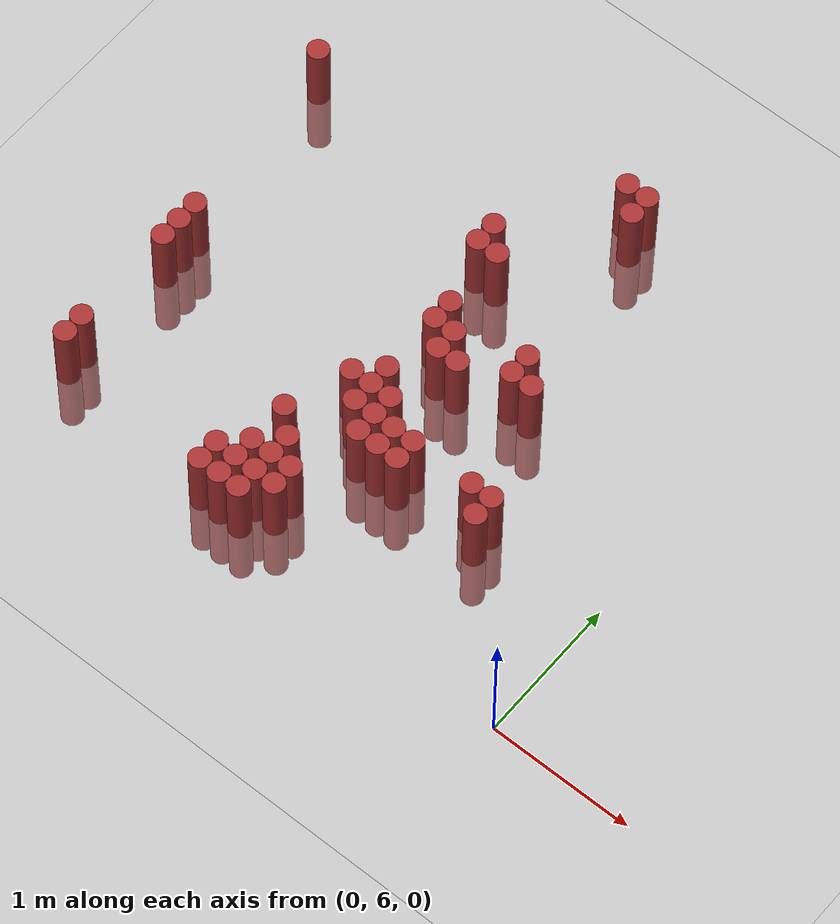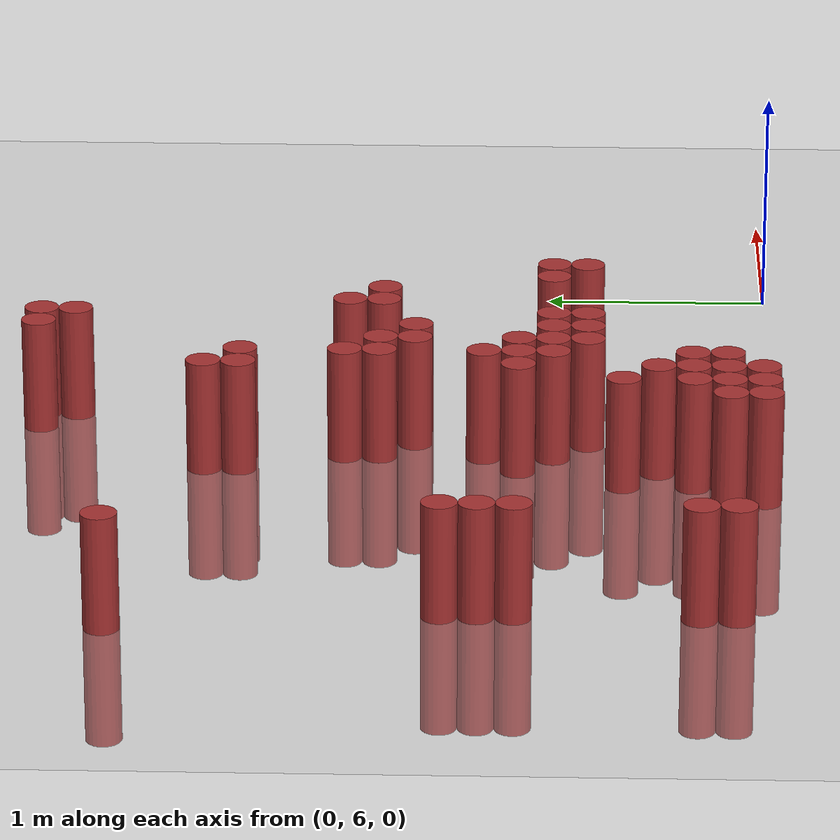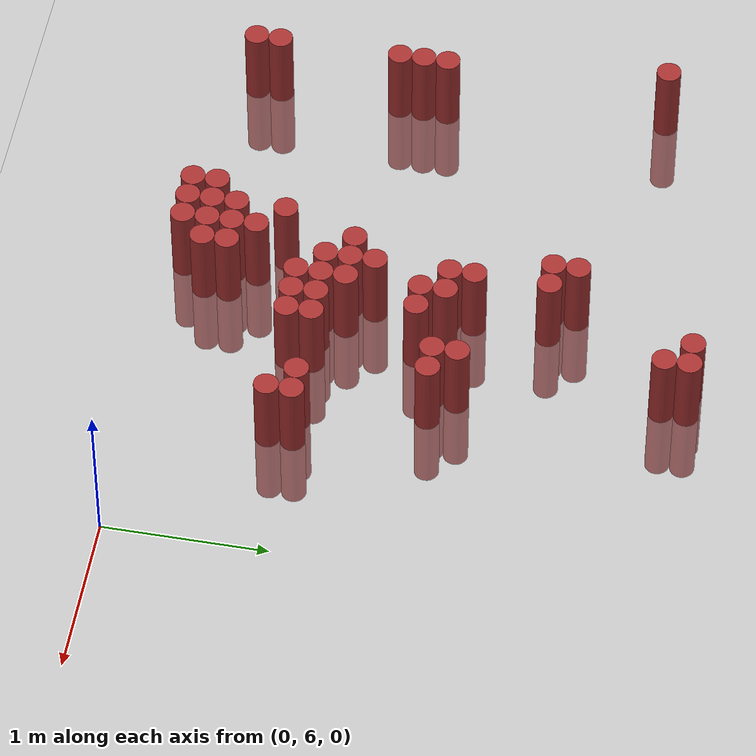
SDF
<sdf version="1.6">
 <world name="world_48">
  <model name="ground_plane">
   <static>1</static>
   <link name="link">
    <collision name="collision">
     <geometry><plane><normal>0 0 1</normal><size>100 100</size></plane></geometry>
     <surface><friction><ode><mu>100</mu><mu2>50</mu2></ode></friction></surface>
    </collision>
    <visual name="visual">
     <cast_shadows>0</cast_shadows>
     <geometry><plane><normal>0 0 1</normal><size>100 100</size></plane></geometry>
     <material>
      <script><uri>file://media/materials/scripts/gazebo.material</uri><name>Gazebo/Grey</name></script>
     </material>
    </visual>
   </link>
  </model>
  <model name="unit_cylinder_159">
   <static>1</static>
   <pose>-3.675000 8.775000 0.000000 0.000000 0.000000 0.000000</pose>
   <link name="link">
    <inertial>
     <mass>1</mass>
     <inertia><ixx>0.145833</ixx><ixy>0</ixy><ixz>0</ixz><iyy>0.145833</iyy><iyz>0</iyz><izz>0.125</izz></inertia>
    </inertial>
    <collision name="collision">
     <geometry><cylinder><radius>0.075000</radius><length>1</length></cylinder></geometry>
    </collision>
    <visual name="visual">
     <geometry><cylinder><radius>0.075000</radius><length>1</length></cylinder></geometry>
     <material>
      <ambient>0.648000 0.192000 0.192000 1</ambient>
      <diffuse>0.648000 0.192000 0.192000 1</diffuse>
     </material>
     <material>
      <script><name>Gazebo/Grey</name><uri>file://media/materials/scripts/gazebo.material</uri></script>
     </material>
    </visual>
   </link>
  </model>
  <model name="unit_cylinder_160">
   <static>1</static>
   <pose>-3.525000 6.225000 0.000000 0.000000 0.000000 0.000000</pose>
   <link name="link">
    <inertial>
     <mass>1</mass>
     <inertia><ixx>0.145833</ixx><ixy>0</ixy><ixz>0</ixz><iyy>0.145833</iyy><iyz>0</iyz><izz>0.125</izz></inertia>
    </inertial>
    <collision name="collision">
     <geometry><cylinder><radius>0.075000</radius><length>1</length></cylinder></geometry>
    </collision>
    <visual name="visual">
     <geometry><cylinder><radius>0.075000</radius><length>1</length></cylinder></geometry>
     <material>
      <ambient>0.648000 0.192000 0.192000 1</ambient>
      <diffuse>0.648000 0.192000 0.192000 1</diffuse>
     </material>
     <material>
      <script><name>Gazebo/Grey</name><uri>file://media/materials/scripts/gazebo.material</uri></script>
     </material>
    </visual>
   </link>
  </model>
  <model name="unit_cylinder_161">
   <static>1</static>
   <pose>-3.525000 6.375000 0.000000 0.000000 0.000000 0.000000</pose>
   <link name="link">
    <inertial>
     <mass>1</mass>
     <inertia><ixx>0.145833</ixx><ixy>0</ixy><ixz>0</ixz><iyy>0.145833</iyy><iyz>0</iyz><izz>0.125</izz></inertia>
    </inertial>
    <collision name="collision">
     <geometry><cylinder><radius>0.075000</radius><length>1</length></cylinder></geometry>
    </collision>
    <visual name="visual">
     <geometry><cylinder><radius>0.075000</radius><length>1</length></cylinder></geometry>
     <material>
      <ambient>0.648000 0.192000 0.192000 1</ambient>
      <diffuse>0.648000 0.192000 0.192000 1</diffuse>
     </material>
     <material>
      <script><name>Gazebo/Grey</name><uri>file://media/materials/scripts/gazebo.material</uri></script>
     </material>
    </visual>
   </link>
  </model>
  <model name="unit_cylinder_162">
   <static>1</static>
   <pose>-3.525000 7.125000 0.000000 0.000000 0.000000 0.000000</pose>
   <link name="link">
    <inertial>
     <mass>1</mass>
     <inertia><ixx>0.145833</ixx><ixy>0</ixy><ixz>0</ixz><iyy>0.145833</iyy><iyz>0</iyz><izz>0.125</izz></inertia>
    </inertial>
    <collision name="collision">
     <geometry><cylinder><radius>0.075000</radius><length>1</length></cylinder></geometry>
    </collision>
    <visual name="visual">
     <geometry><cylinder><radius>0.075000</radius><length>1</length></cylinder></geometry>
     <material>
      <ambient>0.648000 0.192000 0.192000 1</ambient>
      <diffuse>0.648000 0.192000 0.192000 1</diffuse>
     </material>
     <material>
      <script><name>Gazebo/Grey</name><uri>file://media/materials/scripts/gazebo.material</uri></script>
     </material>
    </visual>
   </link>
  </model>
  <model name="unit_cylinder_163">
   <static>1</static>
   <pose>-3.525000 7.275000 0.000000 0.000000 0.000000 0.000000</pose>
   <link name="link">
    <inertial>
     <mass>1</mass>
     <inertia><ixx>0.145833</ixx><ixy>0</ixy><ixz>0</ixz><iyy>0.145833</iyy><iyz>0</iyz><izz>0.125</izz></inertia>
    </inertial>
    <collision name="collision">
     <geometry><cylinder><radius>0.075000</radius><length>1</length></cylinder></geometry>
    </collision>
    <visual name="visual">
     <geometry><cylinder><radius>0.075000</radius><length>1</length></cylinder></geometry>
     <material>
      <ambient>0.648000 0.192000 0.192000 1</ambient>
      <diffuse>0.648000 0.192000 0.192000 1</diffuse>
     </material>
     <material>
      <script><name>Gazebo/Grey</name><uri>file://media/materials/scripts/gazebo.material</uri></script>
     </material>
    </visual>
   </link>
  </model>
  <model name="unit_cylinder_164">
   <static>1</static>
   <pose>-3.525000 7.425000 0.000000 0.000000 0.000000 0.000000</pose>
   <link name="link">
    <inertial>
     <mass>1</mass>
     <inertia><ixx>0.145833</ixx><ixy>0</ixy><ixz>0</ixz><iyy>0.145833</iyy><iyz>0</iyz><izz>0.125</izz></inertia>
    </inertial>
    <collision name="collision">
     <geometry><cylinder><radius>0.075000</radius><length>1</length></cylinder></geometry>
    </collision>
    <visual name="visual">
     <geometry><cylinder><radius>0.075000</radius><length>1</length></cylinder></geometry>
     <material>
      <ambient>0.648000 0.192000 0.192000 1</ambient>
      <diffuse>0.648000 0.192000 0.192000 1</diffuse>
     </material>
     <material>
      <script><name>Gazebo/Grey</name><uri>file://media/materials/scripts/gazebo.material</uri></script>
     </material>
    </visual>
   </link>
  </model>
  <model name="unit_cylinder_173">
   <static>1</static>
   <pose>-2.325000 6.075000 0.000000 0.000000 0.000000 0.000000</pose>
   <link name="link">
    <inertial>
     <mass>1</mass>
     <inertia><ixx>0.145833</ixx><ixy>0</ixy><ixz>0</ixz><iyy>0.145833</iyy><iyz>0</iyz><izz>0.125</izz></inertia>
    </inertial>
    <collision name="collision">
     <geometry><cylinder><radius>0.075000</radius><length>1</length></cylinder></geometry>
    </collision>
    <visual name="visual">
     <geometry><cylinder><radius>0.075000</radius><length>1</length></cylinder></geometry>
     <material>
      <ambient>0.648000 0.192000 0.192000 1</ambient>
      <diffuse>0.648000 0.192000 0.192000 1</diffuse>
     </material>
     <material>
      <script><name>Gazebo/Grey</name><uri>file://media/materials/scripts/gazebo.material</uri></script>
     </material>
    </visual>
   </link>
  </model>
  <model name="unit_cylinder_174">
   <static>1</static>
   <pose>-2.325000 6.225000 0.000000 0.000000 0.000000 0.000000</pose>
   <link name="link">
    <inertial>
     <mass>1</mass>
     <inertia><ixx>0.145833</ixx><ixy>0</ixy><ixz>0</ixz><iyy>0.145833</iyy><iyz>0</iyz><izz>0.125</izz></inertia>
    </inertial>
    <collision name="collision">
     <geometry><cylinder><radius>0.075000</radius><length>1</length></cylinder></geometry>
    </collision>
    <visual name="visual">
     <geometry><cylinder><radius>0.075000</radius><length>1</length></cylinder></geometry>
     <material>
      <ambient>0.648000 0.192000 0.192000 1</ambient>
      <diffuse>0.648000 0.192000 0.192000 1</diffuse>
     </material>
     <material>
      <script><name>Gazebo/Grey</name><uri>file://media/materials/scripts/gazebo.material</uri></script>
     </material>
    </visual>
   </link>
  </model>
  <model name="unit_cylinder_179">
   <static>1</static>
   <pose>-2.175000 6.075000 0.000000 0.000000 0.000000 0.000000</pose>
   <link name="link">
    <inertial>
     <mass>1</mass>
     <inertia><ixx>0.145833</ixx><ixy>0</ixy><ixz>0</ixz><iyy>0.145833</iyy><iyz>0</iyz><izz>0.125</izz></inertia>
    </inertial>
    <collision name="collision">
     <geometry><cylinder><radius>0.075000</radius><length>1</length></cylinder></geometry>
    </collision>
    <visual name="visual">
     <geometry><cylinder><radius>0.075000</radius><length>1</length></cylinder></geometry>
     <material>
      <ambient>0.648000 0.192000 0.192000 1</ambient>
      <diffuse>0.648000 0.192000 0.192000 1</diffuse>
     </material>
     <material>
      <script><name>Gazebo/Grey</name><uri>file://media/materials/scripts/gazebo.material</uri></script>
     </material>
    </visual>
   </link>
  </model>
  <model name="unit_cylinder_180">
   <static>1</static>
   <pose>-2.175000 6.225000 0.000000 0.000000 0.000000 0.000000</pose>
   <link name="link">
    <inertial>
     <mass>1</mass>
     <inertia><ixx>0.145833</ixx><ixy>0</ixy><ixz>0</ixz><iyy>0.145833</iyy><iyz>0</iyz><izz>0.125</izz></inertia>
    </inertial>
    <collision name="collision">
     <geometry><cylinder><radius>0.075000</radius><length>1</length></cylinder></geometry>
    </collision>
    <visual name="visual">
     <geometry><cylinder><radius>0.075000</radius><length>1</length></cylinder></geometry>
     <material>
      <ambient>0.648000 0.192000 0.192000 1</ambient>
      <diffuse>0.648000 0.192000 0.192000 1</diffuse>
     </material>
     <material>
      <script><name>Gazebo/Grey</name><uri>file://media/materials/scripts/gazebo.material</uri></script>
     </material>
    </visual>
   </link>
  </model>
  <model name="unit_cylinder_181">
   <static>1</static>
   <pose>-2.175000 6.375000 0.000000 0.000000 0.000000 0.000000</pose>
   <link name="link">
    <inertial>
     <mass>1</mass>
     <inertia><ixx>0.145833</ixx><ixy>0</ixy><ixz>0</ixz><iyy>0.145833</iyy><iyz>0</iyz><izz>0.125</izz></inertia>
    </inertial>
    <collision name="collision">
     <geometry><cylinder><radius>0.075000</radius><length>1</length></cylinder></geometry>
    </collision>
    <visual name="visual">
     <geometry><cylinder><radius>0.075000</radius><length>1</length></cylinder></geometry>
     <material>
      <ambient>0.648000 0.192000 0.192000 1</ambient>
      <diffuse>0.648000 0.192000 0.192000 1</diffuse>
     </material>
     <material>
      <script><name>Gazebo/Grey</name><uri>file://media/materials/scripts/gazebo.material</uri></script>
     </material>
    </visual>
   </link>
  </model>
  <model name="unit_cylinder_182">
   <static>1</static>
   <pose>-2.175000 6.675000 0.000000 0.000000 0.000000 0.000000</pose>
   <link name="link">
    <inertial>
     <mass>1</mass>
     <inertia><ixx>0.145833</ixx><ixy>0</ixy><ixz>0</ixz><iyy>0.145833</iyy><iyz>0</iyz><izz>0.125</izz></inertia>
    </inertial>
    <collision name="collision">
     <geometry><cylinder><radius>0.075000</radius><length>1</length></cylinder></geometry>
    </collision>
    <visual name="visual">
     <geometry><cylinder><radius>0.075000</radius><length>1</length></cylinder></geometry>
     <material>
      <ambient>0.648000 0.192000 0.192000 1</ambient>
      <diffuse>0.648000 0.192000 0.192000 1</diffuse>
     </material>
     <material>
      <script><name>Gazebo/Grey</name><uri>file://media/materials/scripts/gazebo.material</uri></script>
     </material>
    </visual>
   </link>
  </model>
  <model name="unit_cylinder_185">
   <static>1</static>
   <pose>-2.025000 6.075000 0.000000 0.000000 0.000000 0.000000</pose>
   <link name="link">
    <inertial>
     <mass>1</mass>
     <inertia><ixx>0.145833</ixx><ixy>0</ixy><ixz>0</ixz><iyy>0.145833</iyy><iyz>0</iyz><izz>0.125</izz></inertia>
    </inertial>
    <collision name="collision">
     <geometry><cylinder><radius>0.075000</radius><length>1</length></cylinder></geometry>
    </collision>
    <visual name="visual">
     <geometry><cylinder><radius>0.075000</radius><length>1</length></cylinder></geometry>
     <material>
      <ambient>0.648000 0.192000 0.192000 1</ambient>
      <diffuse>0.648000 0.192000 0.192000 1</diffuse>
     </material>
     <material>
      <script><name>Gazebo/Grey</name><uri>file://media/materials/scripts/gazebo.material</uri></script>
     </material>
    </visual>
   </link>
  </model>
  <model name="unit_cylinder_186">
   <static>1</static>
   <pose>-2.025000 6.225000 0.000000 0.000000 0.000000 0.000000</pose>
   <link name="link">
    <inertial>
     <mass>1</mass>
     <inertia><ixx>0.145833</ixx><ixy>0</ixy><ixz>0</ixz><iyy>0.145833</iyy><iyz>0</iyz><izz>0.125</izz></inertia>
    </inertial>
    <collision name="collision">
     <geometry><cylinder><radius>0.075000</radius><length>1</length></cylinder></geometry>
    </collision>
    <visual name="visual">
     <geometry><cylinder><radius>0.075000</radius><length>1</length></cylinder></geometry>
     <material>
      <ambient>0.648000 0.192000 0.192000 1</ambient>
      <diffuse>0.648000 0.192000 0.192000 1</diffuse>
     </material>
     <material>
      <script><name>Gazebo/Grey</name><uri>file://media/materials/scripts/gazebo.material</uri></script>
     </material>
    </visual>
   </link>
  </model>
  <model name="unit_cylinder_187">
   <static>1</static>
   <pose>-2.025000 6.375000 0.000000 0.000000 0.000000 0.000000</pose>
   <link name="link">
    <inertial>
     <mass>1</mass>
     <inertia><ixx>0.145833</ixx><ixy>0</ixy><ixz>0</ixz><iyy>0.145833</iyy><iyz>0</iyz><izz>0.125</izz></inertia>
    </inertial>
    <collision name="collision">
     <geometry><cylinder><radius>0.075000</radius><length>1</length></cylinder></geometry>
    </collision>
    <visual name="visual">
     <geometry><cylinder><radius>0.075000</radius><length>1</length></cylinder></geometry>
     <material>
      <ambient>0.648000 0.192000 0.192000 1</ambient>
      <diffuse>0.648000 0.192000 0.192000 1</diffuse>
     </material>
     <material>
      <script><name>Gazebo/Grey</name><uri>file://media/materials/scripts/gazebo.material</uri></script>
     </material>
    </visual>
   </link>
  </model>
  <model name="unit_cylinder_188">
   <static>1</static>
   <pose>-2.025000 6.525000 0.000000 0.000000 0.000000 0.000000</pose>
   <link name="link">
    <inertial>
     <mass>1</mass>
     <inertia><ixx>0.145833</ixx><ixy>0</ixy><ixz>0</ixz><iyy>0.145833</iyy><iyz>0</iyz><izz>0.125</izz></inertia>
    </inertial>
    <collision name="collision">
     <geometry><cylinder><radius>0.075000</radius><length>1</length></cylinder></geometry>
    </collision>
    <visual name="visual">
     <geometry><cylinder><radius>0.075000</radius><length>1</length></cylinder></geometry>
     <material>
      <ambient>0.648000 0.192000 0.192000 1</ambient>
      <diffuse>0.648000 0.192000 0.192000 1</diffuse>
     </material>
     <material>
      <script><name>Gazebo/Grey</name><uri>file://media/materials/scripts/gazebo.material</uri></script>
     </material>
    </visual>
   </link>
  </model>
  <model name="unit_cylinder_189">
   <static>1</static>
   <pose>-2.025000 7.125000 0.000000 0.000000 0.000000 0.000000</pose>
   <link name="link">
    <inertial>
     <mass>1</mass>
     <inertia><ixx>0.145833</ixx><ixy>0</ixy><ixz>0</ixz><iyy>0.145833</iyy><iyz>0</iyz><izz>0.125</izz></inertia>
    </inertial>
    <collision name="collision">
     <geometry><cylinder><radius>0.075000</radius><length>1</length></cylinder></geometry>
    </collision>
    <visual name="visual">
     <geometry><cylinder><radius>0.075000</radius><length>1</length></cylinder></geometry>
     <material>
      <ambient>0.648000 0.192000 0.192000 1</ambient>
      <diffuse>0.648000 0.192000 0.192000 1</diffuse>
     </material>
     <material>
      <script><name>Gazebo/Grey</name><uri>file://media/materials/scripts/gazebo.material</uri></script>
     </material>
    </visual>
   </link>
  </model>
  <model name="unit_cylinder_190">
   <static>1</static>
   <pose>-2.025000 8.325000 0.000000 0.000000 0.000000 0.000000</pose>
   <link name="link">
    <inertial>
     <mass>1</mass>
     <inertia><ixx>0.145833</ixx><ixy>0</ixy><ixz>0</ixz><iyy>0.145833</iyy><iyz>0</iyz><izz>0.125</izz></inertia>
    </inertial>
    <collision name="collision">
     <geometry><cylinder><radius>0.075000</radius><length>1</length></cylinder></geometry>
    </collision>
    <visual name="visual">
     <geometry><cylinder><radius>0.075000</radius><length>1</length></cylinder></geometry>
     <material>
      <ambient>0.648000 0.192000 0.192000 1</ambient>
      <diffuse>0.648000 0.192000 0.192000 1</diffuse>
     </material>
     <material>
      <script><name>Gazebo/Grey</name><uri>file://media/materials/scripts/gazebo.material</uri></script>
     </material>
    </visual>
   </link>
  </model>
  <model name="unit_cylinder_191">
   <static>1</static>
   <pose>-2.025000 8.475000 0.000000 0.000000 0.000000 0.000000</pose>
   <link name="link">
    <inertial>
     <mass>1</mass>
     <inertia><ixx>0.145833</ixx><ixy>0</ixy><ixz>0</ixz><iyy>0.145833</iyy><iyz>0</iyz><izz>0.125</izz></inertia>
    </inertial>
    <collision name="collision">
     <geometry><cylinder><radius>0.075000</radius><length>1</length></cylinder></geometry>
    </collision>
    <visual name="visual">
     <geometry><cylinder><radius>0.075000</radius><length>1</length></cylinder></geometry>
     <material>
      <ambient>0.648000 0.192000 0.192000 1</ambient>
      <diffuse>0.648000 0.192000 0.192000 1</diffuse>
     </material>
     <material>
      <script><name>Gazebo/Grey</name><uri>file://media/materials/scripts/gazebo.material</uri></script>
     </material>
    </visual>
   </link>
  </model>
  <model name="unit_cylinder_192">
   <static>1</static>
   <pose>-1.875000 6.225000 0.000000 0.000000 0.000000 0.000000</pose>
   <link name="link">
    <inertial>
     <mass>1</mass>
     <inertia><ixx>0.145833</ixx><ixy>0</ixy><ixz>0</ixz><iyy>0.145833</iyy><iyz>0</iyz><izz>0.125</izz></inertia>
    </inertial>
    <collision name="collision">
     <geometry><cylinder><radius>0.075000</radius><length>1</length></cylinder></geometry>
    </collision>
    <visual name="visual">
     <geometry><cylinder><radius>0.075000</radius><length>1</length></cylinder></geometry>
     <material>
      <ambient>0.648000 0.192000 0.192000 1</ambient>
      <diffuse>0.648000 0.192000 0.192000 1</diffuse>
     </material>
     <material>
      <script><name>Gazebo/Grey</name><uri>file://media/materials/scripts/gazebo.material</uri></script>
     </material>
    </visual>
   </link>
  </model>
  <model name="unit_cylinder_193">
   <static>1</static>
   <pose>-1.875000 6.375000 0.000000 0.000000 0.000000 0.000000</pose>
   <link name="link">
    <inertial>
     <mass>1</mass>
     <inertia><ixx>0.145833</ixx><ixy>0</ixy><ixz>0</ixz><iyy>0.145833</iyy><iyz>0</iyz><izz>0.125</izz></inertia>
    </inertial>
    <collision name="collision">
     <geometry><cylinder><radius>0.075000</radius><length>1</length></cylinder></geometry>
    </collision>
    <visual name="visual">
     <geometry><cylinder><radius>0.075000</radius><length>1</length></cylinder></geometry>
     <material>
      <ambient>0.648000 0.192000 0.192000 1</ambient>
      <diffuse>0.648000 0.192000 0.192000 1</diffuse>
     </material>
     <material>
      <script><name>Gazebo/Grey</name><uri>file://media/materials/scripts/gazebo.material</uri></script>
     </material>
    </visual>
   </link>
  </model>
  <model name="unit_cylinder_194">
   <static>1</static>
   <pose>-1.875000 6.975000 0.000000 0.000000 0.000000 0.000000</pose>
   <link name="link">
    <inertial>
     <mass>1</mass>
     <inertia><ixx>0.145833</ixx><ixy>0</ixy><ixz>0</ixz><iyy>0.145833</iyy><iyz>0</iyz><izz>0.125</izz></inertia>
    </inertial>
    <collision name="collision">
     <geometry><cylinder><radius>0.075000</radius><length>1</length></cylinder></geometry>
    </collision>
    <visual name="visual">
     <geometry><cylinder><radius>0.075000</radius><length>1</length></cylinder></geometry>
     <material>
      <ambient>0.648000 0.192000 0.192000 1</ambient>
      <diffuse>0.648000 0.192000 0.192000 1</diffuse>
     </material>
     <material>
      <script><name>Gazebo/Grey</name><uri>file://media/materials/scripts/gazebo.material</uri></script>
     </material>
    </visual>
   </link>
  </model>
  <model name="unit_cylinder_195">
   <static>1</static>
   <pose>-1.875000 7.125000 0.000000 0.000000 0.000000 0.000000</pose>
   <link name="link">
    <inertial>
     <mass>1</mass>
     <inertia><ixx>0.145833</ixx><ixy>0</ixy><ixz>0</ixz><iyy>0.145833</iyy><iyz>0</iyz><izz>0.125</izz></inertia>
    </inertial>
    <collision name="collision">
     <geometry><cylinder><radius>0.075000</radius><length>1</length></cylinder></geometry>
    </collision>
    <visual name="visual">
     <geometry><cylinder><radius>0.075000</radius><length>1</length></cylinder></geometry>
     <material>
      <ambient>0.648000 0.192000 0.192000 1</ambient>
      <diffuse>0.648000 0.192000 0.192000 1</diffuse>
     </material>
     <material>
      <script><name>Gazebo/Grey</name><uri>file://media/materials/scripts/gazebo.material</uri></script>
     </material>
    </visual>
   </link>
  </model>
  <model name="unit_cylinder_196">
   <static>1</static>
   <pose>-1.875000 7.275000 0.000000 0.000000 0.000000 0.000000</pose>
   <link name="link">
    <inertial>
     <mass>1</mass>
     <inertia><ixx>0.145833</ixx><ixy>0</ixy><ixz>0</ixz><iyy>0.145833</iyy><iyz>0</iyz><izz>0.125</izz></inertia>
    </inertial>
    <collision name="collision">
     <geometry><cylinder><radius>0.075000</radius><length>1</length></cylinder></geometry>
    </collision>
    <visual name="visual">
     <geometry><cylinder><radius>0.075000</radius><length>1</length></cylinder></geometry>
     <material>
      <ambient>0.648000 0.192000 0.192000 1</ambient>
      <diffuse>0.648000 0.192000 0.192000 1</diffuse>
     </material>
     <material>
      <script><name>Gazebo/Grey</name><uri>file://media/materials/scripts/gazebo.material</uri></script>
     </material>
    </visual>
   </link>
  </model>
  <model name="unit_cylinder_197">
   <static>1</static>
   <pose>-1.875000 7.725000 0.000000 0.000000 0.000000 0.000000</pose>
   <link name="link">
    <inertial>
     <mass>1</mass>
     <inertia><ixx>0.145833</ixx><ixy>0</ixy><ixz>0</ixz><iyy>0.145833</iyy><iyz>0</iyz><izz>0.125</izz></inertia>
    </inertial>
    <collision name="collision">
     <geometry><cylinder><radius>0.075000</radius><length>1</length></cylinder></geometry>
    </collision>
    <visual name="visual">
     <geometry><cylinder><radius>0.075000</radius><length>1</length></cylinder></geometry>
     <material>
      <ambient>0.648000 0.192000 0.192000 1</ambient>
      <diffuse>0.648000 0.192000 0.192000 1</diffuse>
     </material>
     <material>
      <script><name>Gazebo/Grey</name><uri>file://media/materials/scripts/gazebo.material</uri></script>
     </material>
    </visual>
   </link>
  </model>
  <model name="unit_cylinder_198">
   <static>1</static>
   <pose>-1.875000 7.875000 0.000000 0.000000 0.000000 0.000000</pose>
   <link name="link">
    <inertial>
     <mass>1</mass>
     <inertia><ixx>0.145833</ixx><ixy>0</ixy><ixz>0</ixz><iyy>0.145833</iyy><iyz>0</iyz><izz>0.125</izz></inertia>
    </inertial>
    <collision name="collision">
     <geometry><cylinder><radius>0.075000</radius><length>1</length></cylinder></geometry>
    </collision>
    <visual name="visual">
     <geometry><cylinder><radius>0.075000</radius><length>1</length></cylinder></geometry>
     <material>
      <ambient>0.648000 0.192000 0.192000 1</ambient>
      <diffuse>0.648000 0.192000 0.192000 1</diffuse>
     </material>
     <material>
      <script><name>Gazebo/Grey</name><uri>file://media/materials/scripts/gazebo.material</uri></script>
     </material>
    </visual>
   </link>
  </model>
  <model name="unit_cylinder_199">
   <static>1</static>
   <pose>-1.875000 8.325000 0.000000 0.000000 0.000000 0.000000</pose>
   <link name="link">
    <inertial>
     <mass>1</mass>
     <inertia><ixx>0.145833</ixx><ixy>0</ixy><ixz>0</ixz><iyy>0.145833</iyy><iyz>0</iyz><izz>0.125</izz></inertia>
    </inertial>
    <collision name="collision">
     <geometry><cylinder><radius>0.075000</radius><length>1</length></cylinder></geometry>
    </collision>
    <visual name="visual">
     <geometry><cylinder><radius>0.075000</radius><length>1</length></cylinder></geometry>
     <material>
      <ambient>0.648000 0.192000 0.192000 1</ambient>
      <diffuse>0.648000 0.192000 0.192000 1</diffuse>
     </material>
     <material>
      <script><name>Gazebo/Grey</name><uri>file://media/materials/scripts/gazebo.material</uri></script>
     </material>
    </visual>
   </link>
  </model>
  <model name="unit_cylinder_200">
   <static>1</static>
   <pose>-1.725000 6.825000 0.000000 0.000000 0.000000 0.000000</pose>
   <link name="link">
    <inertial>
     <mass>1</mass>
     <inertia><ixx>0.145833</ixx><ixy>0</ixy><ixz>0</ixz><iyy>0.145833</iyy><iyz>0</iyz><izz>0.125</izz></inertia>
    </inertial>
    <collision name="collision">
     <geometry><cylinder><radius>0.075000</radius><length>1</length></cylinder></geometry>
    </collision>
    <visual name="visual">
     <geometry><cylinder><radius>0.075000</radius><length>1</length></cylinder></geometry>
     <material>
      <ambient>0.648000 0.192000 0.192000 1</ambient>
      <diffuse>0.648000 0.192000 0.192000 1</diffuse>
     </material>
     <material>
      <script><name>Gazebo/Grey</name><uri>file://media/materials/scripts/gazebo.material</uri></script>
     </material>
    </visual>
   </link>
  </model>
  <model name="unit_cylinder_201">
   <static>1</static>
   <pose>-1.725000 6.975000 0.000000 0.000000 0.000000 0.000000</pose>
   <link name="link">
    <inertial>
     <mass>1</mass>
     <inertia><ixx>0.145833</ixx><ixy>0</ixy><ixz>0</ixz><iyy>0.145833</iyy><iyz>0</iyz><izz>0.125</izz></inertia>
    </inertial>
    <collision name="collision">
     <geometry><cylinder><radius>0.075000</radius><length>1</length></cylinder></geometry>
    </collision>
    <visual name="visual">
     <geometry><cylinder><radius>0.075000</radius><length>1</length></cylinder></geometry>
     <material>
      <ambient>0.648000 0.192000 0.192000 1</ambient>
      <diffuse>0.648000 0.192000 0.192000 1</diffuse>
     </material>
     <material>
      <script><name>Gazebo/Grey</name><uri>file://media/materials/scripts/gazebo.material</uri></script>
     </material>
    </visual>
   </link>
  </model>
  <model name="unit_cylinder_202">
   <static>1</static>
   <pose>-1.725000 7.125000 0.000000 0.000000 0.000000 0.000000</pose>
   <link name="link">
    <inertial>
     <mass>1</mass>
     <inertia><ixx>0.145833</ixx><ixy>0</ixy><ixz>0</ixz><iyy>0.145833</iyy><iyz>0</iyz><izz>0.125</izz></inertia>
    </inertial>
    <collision name="collision">
     <geometry><cylinder><radius>0.075000</radius><length>1</length></cylinder></geometry>
    </collision>
    <visual name="visual">
     <geometry><cylinder><radius>0.075000</radius><length>1</length></cylinder></geometry>
     <material>
      <ambient>0.648000 0.192000 0.192000 1</ambient>
      <diffuse>0.648000 0.192000 0.192000 1</diffuse>
     </material>
     <material>
      <script><name>Gazebo/Grey</name><uri>file://media/materials/scripts/gazebo.material</uri></script>
     </material>
    </visual>
   </link>
  </model>
  <model name="unit_cylinder_203">
   <static>1</static>
   <pose>-1.725000 7.575000 0.000000 0.000000 0.000000 0.000000</pose>
   <link name="link">
    <inertial>
     <mass>1</mass>
     <inertia><ixx>0.145833</ixx><ixy>0</ixy><ixz>0</ixz><iyy>0.145833</iyy><iyz>0</iyz><izz>0.125</izz></inertia>
    </inertial>
    <collision name="collision">
     <geometry><cylinder><radius>0.075000</radius><length>1</length></cylinder></geometry>
    </collision>
    <visual name="visual">
     <geometry><cylinder><radius>0.075000</radius><length>1</length></cylinder></geometry>
     <material>
      <ambient>0.648000 0.192000 0.192000 1</ambient>
      <diffuse>0.648000 0.192000 0.192000 1</diffuse>
     </material>
     <material>
      <script><name>Gazebo/Grey</name><uri>file://media/materials/scripts/gazebo.material</uri></script>
     </material>
    </visual>
   </link>
  </model>
  <model name="unit_cylinder_204">
   <static>1</static>
   <pose>-1.725000 7.725000 0.000000 0.000000 0.000000 0.000000</pose>
   <link name="link">
    <inertial>
     <mass>1</mass>
     <inertia><ixx>0.145833</ixx><ixy>0</ixy><ixz>0</ixz><iyy>0.145833</iyy><iyz>0</iyz><izz>0.125</izz></inertia>
    </inertial>
    <collision name="collision">
     <geometry><cylinder><radius>0.075000</radius><length>1</length></cylinder></geometry>
    </collision>
    <visual name="visual">
     <geometry><cylinder><radius>0.075000</radius><length>1</length></cylinder></geometry>
     <material>
      <ambient>0.648000 0.192000 0.192000 1</ambient>
      <diffuse>0.648000 0.192000 0.192000 1</diffuse>
     </material>
     <material>
      <script><name>Gazebo/Grey</name><uri>file://media/materials/scripts/gazebo.material</uri></script>
     </material>
    </visual>
   </link>
  </model>
  <model name="unit_cylinder_206">
   <static>1</static>
   <pose>-1.575000 6.825000 0.000000 0.000000 0.000000 0.000000</pose>
   <link name="link">
    <inertial>
     <mass>1</mass>
     <inertia><ixx>0.145833</ixx><ixy>0</ixy><ixz>0</ixz><iyy>0.145833</iyy><iyz>0</iyz><izz>0.125</izz></inertia>
    </inertial>
    <collision name="collision">
     <geometry><cylinder><radius>0.075000</radius><length>1</length></cylinder></geometry>
    </collision>
    <visual name="visual">
     <geometry><cylinder><radius>0.075000</radius><length>1</length></cylinder></geometry>
     <material>
      <ambient>0.648000 0.192000 0.192000 1</ambient>
      <diffuse>0.648000 0.192000 0.192000 1</diffuse>
     </material>
     <material>
      <script><name>Gazebo/Grey</name><uri>file://media/materials/scripts/gazebo.material</uri></script>
     </material>
    </visual>
   </link>
  </model>
  <model name="unit_cylinder_207">
   <static>1</static>
   <pose>-1.575000 6.975000 0.000000 0.000000 0.000000 0.000000</pose>
   <link name="link">
    <inertial>
     <mass>1</mass>
     <inertia><ixx>0.145833</ixx><ixy>0</ixy><ixz>0</ixz><iyy>0.145833</iyy><iyz>0</iyz><izz>0.125</izz></inertia>
    </inertial>
    <collision name="collision">
     <geometry><cylinder><radius>0.075000</radius><length>1</length></cylinder></geometry>
    </collision>
    <visual name="visual">
     <geometry><cylinder><radius>0.075000</radius><length>1</length></cylinder></geometry>
     <material>
      <ambient>0.648000 0.192000 0.192000 1</ambient>
      <diffuse>0.648000 0.192000 0.192000 1</diffuse>
     </material>
     <material>
      <script><name>Gazebo/Grey</name><uri>file://media/materials/scripts/gazebo.material</uri></script>
     </material>
    </visual>
   </link>
  </model>
  <model name="unit_cylinder_208">
   <static>1</static>
   <pose>-1.575000 7.575000 0.000000 0.000000 0.000000 0.000000</pose>
   <link name="link">
    <inertial>
     <mass>1</mass>
     <inertia><ixx>0.145833</ixx><ixy>0</ixy><ixz>0</ixz><iyy>0.145833</iyy><iyz>0</iyz><izz>0.125</izz></inertia>
    </inertial>
    <collision name="collision">
     <geometry><cylinder><radius>0.075000</radius><length>1</length></cylinder></geometry>
    </collision>
    <visual name="visual">
     <geometry><cylinder><radius>0.075000</radius><length>1</length></cylinder></geometry>
     <material>
      <ambient>0.648000 0.192000 0.192000 1</ambient>
      <diffuse>0.648000 0.192000 0.192000 1</diffuse>
     </material>
     <material>
      <script><name>Gazebo/Grey</name><uri>file://media/materials/scripts/gazebo.material</uri></script>
     </material>
    </visual>
   </link>
  </model>
  <model name="unit_cylinder_209">
   <static>1</static>
   <pose>-1.575000 9.225000 0.000000 0.000000 0.000000 0.000000</pose>
   <link name="link">
    <inertial>
     <mass>1</mass>
     <inertia><ixx>0.145833</ixx><ixy>0</ixy><ixz>0</ixz><iyy>0.145833</iyy><iyz>0</iyz><izz>0.125</izz></inertia>
    </inertial>
    <collision name="collision">
     <geometry><cylinder><radius>0.075000</radius><length>1</length></cylinder></geometry>
    </collision>
    <visual name="visual">
     <geometry><cylinder><radius>0.075000</radius><length>1</length></cylinder></geometry>
     <material>
      <ambient>0.648000 0.192000 0.192000 1</ambient>
      <diffuse>0.648000 0.192000 0.192000 1</diffuse>
     </material>
     <material>
      <script><name>Gazebo/Grey</name><uri>file://media/materials/scripts/gazebo.material</uri></script>
     </material>
    </visual>
   </link>
  </model>
  <model name="unit_cylinder_212">
   <static>1</static>
   <pose>-1.425000 6.825000 0.000000 0.000000 0.000000 0.000000</pose>
   <link name="link">
    <inertial>
     <mass>1</mass>
     <inertia><ixx>0.145833</ixx><ixy>0</ixy><ixz>0</ixz><iyy>0.145833</iyy><iyz>0</iyz><izz>0.125</izz></inertia>
    </inertial>
    <collision name="collision">
     <geometry><cylinder><radius>0.075000</radius><length>1</length></cylinder></geometry>
    </collision>
    <visual name="visual">
     <geometry><cylinder><radius>0.075000</radius><length>1</length></cylinder></geometry>
     <material>
      <ambient>0.648000 0.192000 0.192000 1</ambient>
      <diffuse>0.648000 0.192000 0.192000 1</diffuse>
     </material>
     <material>
      <script><name>Gazebo/Grey</name><uri>file://media/materials/scripts/gazebo.material</uri></script>
     </material>
    </visual>
   </link>
  </model>
  <model name="unit_cylinder_213">
   <static>1</static>
   <pose>-1.425000 6.975000 0.000000 0.000000 0.000000 0.000000</pose>
   <link name="link">
    <inertial>
     <mass>1</mass>
     <inertia><ixx>0.145833</ixx><ixy>0</ixy><ixz>0</ixz><iyy>0.145833</iyy><iyz>0</iyz><izz>0.125</izz></inertia>
    </inertial>
    <collision name="collision">
     <geometry><cylinder><radius>0.075000</radius><length>1</length></cylinder></geometry>
    </collision>
    <visual name="visual">
     <geometry><cylinder><radius>0.075000</radius><length>1</length></cylinder></geometry>
     <material>
      <ambient>0.648000 0.192000 0.192000 1</ambient>
      <diffuse>0.648000 0.192000 0.192000 1</diffuse>
     </material>
     <material>
      <script><name>Gazebo/Grey</name><uri>file://media/materials/scripts/gazebo.material</uri></script>
     </material>
    </visual>
   </link>
  </model>
  <model name="unit_cylinder_214">
   <static>1</static>
   <pose>-1.425000 9.075000 0.000000 0.000000 0.000000 0.000000</pose>
   <link name="link">
    <inertial>
     <mass>1</mass>
     <inertia><ixx>0.145833</ixx><ixy>0</ixy><ixz>0</ixz><iyy>0.145833</iyy><iyz>0</iyz><izz>0.125</izz></inertia>
    </inertial>
    <collision name="collision">
     <geometry><cylinder><radius>0.075000</radius><length>1</length></cylinder></geometry>
    </collision>
    <visual name="visual">
     <geometry><cylinder><radius>0.075000</radius><length>1</length></cylinder></geometry>
     <material>
      <ambient>0.648000 0.192000 0.192000 1</ambient>
      <diffuse>0.648000 0.192000 0.192000 1</diffuse>
     </material>
     <material>
      <script><name>Gazebo/Grey</name><uri>file://media/materials/scripts/gazebo.material</uri></script>
     </material>
    </visual>
   </link>
  </model>
  <model name="unit_cylinder_215">
   <static>1</static>
   <pose>-1.425000 9.225000 0.000000 0.000000 0.000000 0.000000</pose>
   <link name="link">
    <inertial>
     <mass>1</mass>
     <inertia><ixx>0.145833</ixx><ixy>0</ixy><ixz>0</ixz><iyy>0.145833</iyy><iyz>0</iyz><izz>0.125</izz></inertia>
    </inertial>
    <collision name="collision">
     <geometry><cylinder><radius>0.075000</radius><length>1</length></cylinder></geometry>
    </collision>
    <visual name="visual">
     <geometry><cylinder><radius>0.075000</radius><length>1</length></cylinder></geometry>
     <material>
      <ambient>0.648000 0.192000 0.192000 1</ambient>
      <diffuse>0.648000 0.192000 0.192000 1</diffuse>
     </material>
     <material>
      <script><name>Gazebo/Grey</name><uri>file://media/materials/scripts/gazebo.material</uri></script>
     </material>
    </visual>
   </link>
  </model>
  <model name="unit_cylinder_216">
   <static>1</static>
   <pose>-1.275000 7.725000 0.000000 0.000000 0.000000 0.000000</pose>
   <link name="link">
    <inertial>
     <mass>1</mass>
     <inertia><ixx>0.145833</ixx><ixy>0</ixy><ixz>0</ixz><iyy>0.145833</iyy><iyz>0</iyz><izz>0.125</izz></inertia>
    </inertial>
    <collision name="collision">
     <geometry><cylinder><radius>0.075000</radius><length>1</length></cylinder></geometry>
    </collision>
    <visual name="visual">
     <geometry><cylinder><radius>0.075000</radius><length>1</length></cylinder></geometry>
     <material>
      <ambient>0.648000 0.192000 0.192000 1</ambient>
      <diffuse>0.648000 0.192000 0.192000 1</diffuse>
     </material>
     <material>
      <script><name>Gazebo/Grey</name><uri>file://media/materials/scripts/gazebo.material</uri></script>
     </material>
    </visual>
   </link>
  </model>
  <model name="unit_cylinder_217">
   <static>1</static>
   <pose>-1.275000 7.875000 0.000000 0.000000 0.000000 0.000000</pose>
   <link name="link">
    <inertial>
     <mass>1</mass>
     <inertia><ixx>0.145833</ixx><ixy>0</ixy><ixz>0</ixz><iyy>0.145833</iyy><iyz>0</iyz><izz>0.125</izz></inertia>
    </inertial>
    <collision name="collision">
     <geometry><cylinder><radius>0.075000</radius><length>1</length></cylinder></geometry>
    </collision>
    <visual name="visual">
     <geometry><cylinder><radius>0.075000</radius><length>1</length></cylinder></geometry>
     <material>
      <ambient>0.648000 0.192000 0.192000 1</ambient>
      <diffuse>0.648000 0.192000 0.192000 1</diffuse>
     </material>
     <material>
      <script><name>Gazebo/Grey</name><uri>file://media/materials/scripts/gazebo.material</uri></script>
     </material>
    </visual>
   </link>
  </model>
  <model name="unit_cylinder_218">
   <static>1</static>
   <pose>-1.125000 7.725000 0.000000 0.000000 0.000000 0.000000</pose>
   <link name="link">
    <inertial>
     <mass>1</mass>
     <inertia><ixx>0.145833</ixx><ixy>0</ixy><ixz>0</ixz><iyy>0.145833</iyy><iyz>0</iyz><izz>0.125</izz></inertia>
    </inertial>
    <collision name="collision">
     <geometry><cylinder><radius>0.075000</radius><length>1</length></cylinder></geometry>
    </collision>
    <visual name="visual">
     <geometry><cylinder><radius>0.075000</radius><length>1</length></cylinder></geometry>
     <material>
      <ambient>0.648000 0.192000 0.192000 1</ambient>
      <diffuse>0.648000 0.192000 0.192000 1</diffuse>
     </material>
     <material>
      <script><name>Gazebo/Grey</name><uri>file://media/materials/scripts/gazebo.material</uri></script>
     </material>
    </visual>
   </link>
  </model>
  <model name="unit_cylinder_219">
   <static>1</static>
   <pose>-0.975000 6.975000 0.000000 0.000000 0.000000 0.000000</pose>
   <link name="link">
    <inertial>
     <mass>1</mass>
     <inertia><ixx>0.145833</ixx><ixy>0</ixy><ixz>0</ixz><iyy>0.145833</iyy><iyz>0</iyz><izz>0.125</izz></inertia>
    </inertial>
    <collision name="collision">
     <geometry><cylinder><radius>0.075000</radius><length>1</length></cylinder></geometry>
    </collision>
    <visual name="visual">
     <geometry><cylinder><radius>0.075000</radius><length>1</length></cylinder></geometry>
     <material>
      <ambient>0.648000 0.192000 0.192000 1</ambient>
      <diffuse>0.648000 0.192000 0.192000 1</diffuse>
     </material>
     <material>
      <script><name>Gazebo/Grey</name><uri>file://media/materials/scripts/gazebo.material</uri></script>
     </material>
    </visual>
   </link>
  </model>
  <model name="unit_cylinder_220">
   <static>1</static>
   <pose>-0.825000 6.825000 0.000000 0.000000 0.000000 0.000000</pose>
   <link name="link">
    <inertial>
     <mass>1</mass>
     <inertia><ixx>0.145833</ixx><ixy>0</ixy><ixz>0</ixz><iyy>0.145833</iyy><iyz>0</iyz><izz>0.125</izz></inertia>
    </inertial>
    <collision name="collision">
     <geometry><cylinder><radius>0.075000</radius><length>1</length></cylinder></geometry>
    </collision>
    <visual name="visual">
     <geometry><cylinder><radius>0.075000</radius><length>1</length></cylinder></geometry>
     <material>
      <ambient>0.648000 0.192000 0.192000 1</ambient>
      <diffuse>0.648000 0.192000 0.192000 1</diffuse>
     </material>
     <material>
      <script><name>Gazebo/Grey</name><uri>file://media/materials/scripts/gazebo.material</uri></script>
     </material>
    </visual>
   </link>
  </model>
  <model name="unit_cylinder_221">
   <static>1</static>
   <pose>-0.825000 6.975000 0.000000 0.000000 0.000000 0.000000</pose>
   <link name="link">
    <inertial>
     <mass>1</mass>
     <inertia><ixx>0.145833</ixx><ixy>0</ixy><ixz>0</ixz><iyy>0.145833</iyy><iyz>0</iyz><izz>0.125</izz></inertia>
    </inertial>
    <collision name="collision">
     <geometry><cylinder><radius>0.075000</radius><length>1</length></cylinder></geometry>
    </collision>
    <visual name="visual">
     <geometry><cylinder><radius>0.075000</radius><length>1</length></cylinder></geometry>
     <material>
      <ambient>0.648000 0.192000 0.192000 1</ambient>
      <diffuse>0.648000 0.192000 0.192000 1</diffuse>
     </material>
     <material>
      <script><name>Gazebo/Grey</name><uri>file://media/materials/scripts/gazebo.material</uri></script>
     </material>
    </visual>
   </link>
  </model>
 </world>
</sdf>
